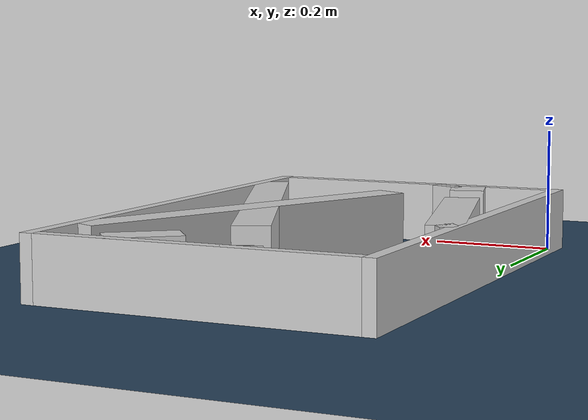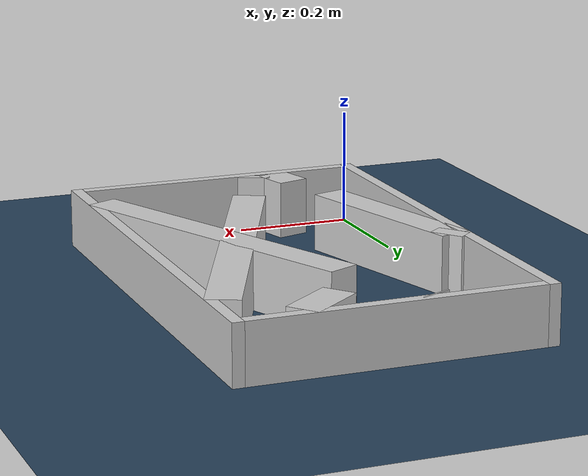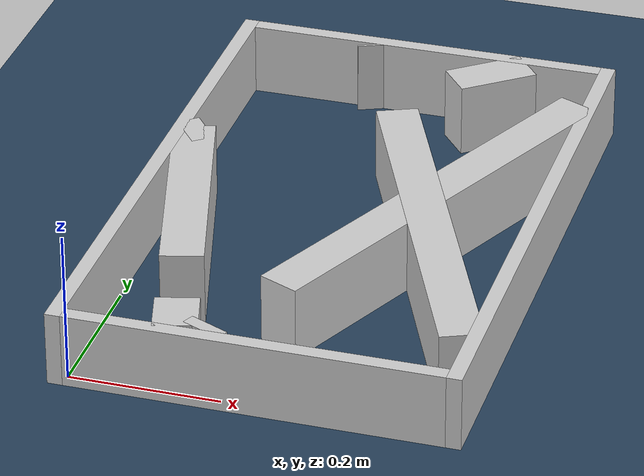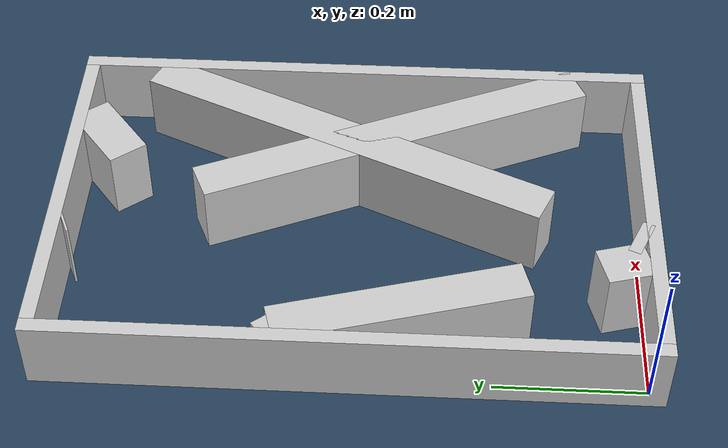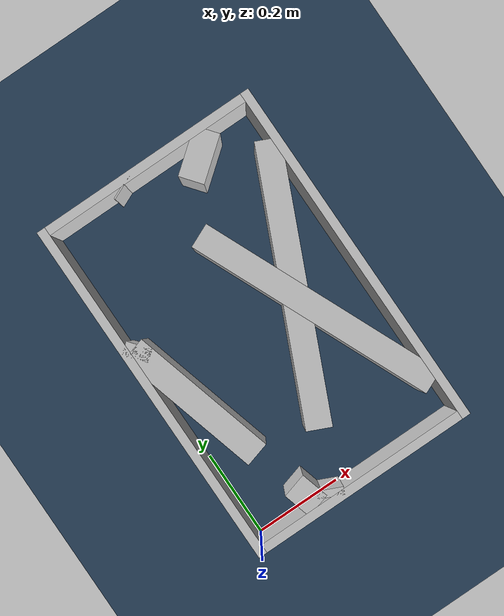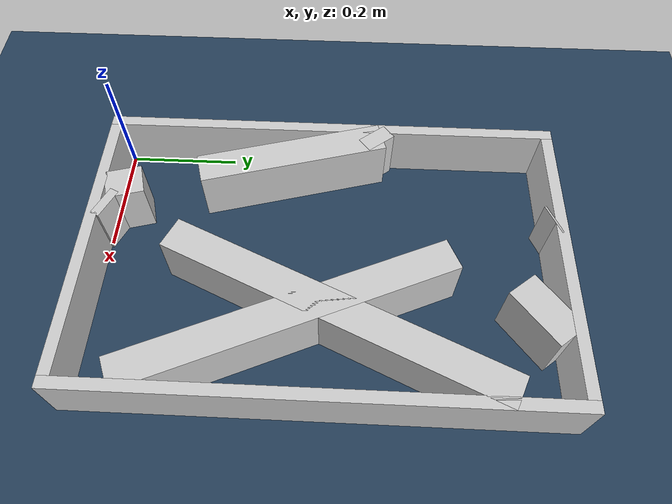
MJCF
<?xml version="1.0" ?>
<mujoco model="generated_real_template">
  <compiler angle="degree"/>
  <option timestep="0.002" integrator="implicitfast" iterations="100" cone="elliptic"/>
  <default>
    <geom density="1"/>
  </default>
  <asset>
    <texture builtin="gradient" height="3072" rgb1="0.3 0.5 0.7" rgb2="0 0 0" type="skybox" width="512"/>
    <texture builtin="checker" height="300" mark="edge" markrgb="0.8 0.8 0.8" name="groundplane" rgb1="0.2 0.3 0.4" rgb2="0.1 0.2 0.3" type="2d" width="300"/>
    <material name="groundplane" reflectance="0.2" texrepeat="5 5" texture="groundplane" texuniform="true"/>
  </asset>
  <worldbody>
    <light dir="0 0 -1" directional="true" pos="0 0 1.5"/>
    <geom name="floor" type="plane" condim="4" friction="0.5 0.005 0.001" material="groundplane" size="0 0 0.05"/>
    <body name="walls">
      <geom name="wall_boundary_left" type="box" condim="4" friction="1.0 0.005 0.0001" rgba="0.8 0.8 0.8 1" pos="-0.010000 0.387500 0.050000" euler="0 0 0.000000" size="0.010000 0.407500 0.050000"/>
      <geom name="wall_boundary_right" type="box" condim="4" friction="1.0 0.005 0.0001" rgba="0.8 0.8 0.8 1" pos="0.500000 0.387500 0.050000" euler="0 0 0.000000" size="0.010000 0.407500 0.050000"/>
      <geom name="wall_boundary_bottom" type="box" condim="4" friction="1.0 0.005 0.0001" rgba="0.8 0.8 0.8 1" pos="0.245000 -0.010000 0.050000" euler="0 0 0.000000" size="0.245000 0.010000 0.050000"/>
      <geom name="wall_boundary_top" type="box" condim="4" friction="1.0 0.005 0.0001" rgba="0.8 0.8 0.8 1" pos="0.245000 0.785000 0.050000" euler="0 0 0.000000" size="0.245000 0.010000 0.050000"/>
      <geom name="wall_inner_1_1" type="box" condim="4" friction="1.0 0.005 0.0001" rgba="0.8 0.8 0.8 1" pos="0.133168 0.031498 0.050000" euler="0 0 105.536026" size="0.032692 0.028500 0.050000"/>
      <geom name="wall_inner_1_2" type="box" condim="4" friction="1.0 0.005 0.0001" rgba="0.8 0.8 0.8 1" pos="0.052656 0.321109 0.050000" euler="0 0 105.536026" size="0.168741 0.028500 0.050000"/>
      <geom name="wall_inner_2_1" type="box" condim="4" friction="1.0 0.005 0.0001" rgba="0.8 0.8 0.8 1" pos="0.178816 0.773496 0.050000" euler="0 0 -66.347455" size="0.001642 0.028500 0.050000"/>
      <geom name="wall_inner_2_2" type="box" condim="4" friction="1.0 0.005 0.0001" rgba="0.8 0.8 0.8 1" pos="0.369051 0.339152 0.050000" euler="0 0 -66.347455" size="0.286255 0.028500 0.050000"/>
      <geom name="wall_inner_3_1" type="box" condim="4" friction="1.0 0.005 0.0001" rgba="0.8 0.8 0.8 1" pos="0.012101 0.473974 0.050000" euler="0 0 38.164374" size="0.015391 0.028500 0.050000"/>
      <geom name="wall_inner_3_2" type="box" condim="4" friction="1.0 0.005 0.0001" rgba="0.8 0.8 0.8 1" pos="0.348645 0.738470 0.050000" euler="0 0 38.164374" size="0.055220 0.028500 0.050000"/>
      <geom name="wall_inner_4_1" type="box" condim="4" friction="1.0 0.005 0.0001" rgba="0.8 0.8 0.8 1" pos="0.178508 0.007761 0.050000" euler="0 0 65.735619" size="0.008513 0.028500 0.050000"/>
      <geom name="wall_inner_4_2" type="box" condim="4" friction="1.0 0.005 0.0001" rgba="0.8 0.8 0.8 1" pos="0.358717 0.407542 0.050000" euler="0 0 65.735619" size="0.304905 0.028500 0.050000"/>
    </body>
  </worldbody>
</mujoco>
